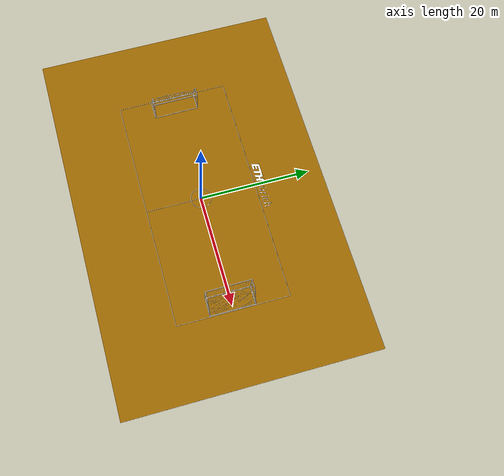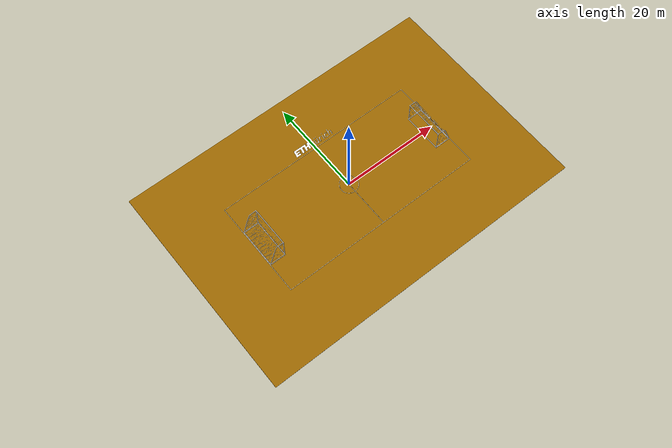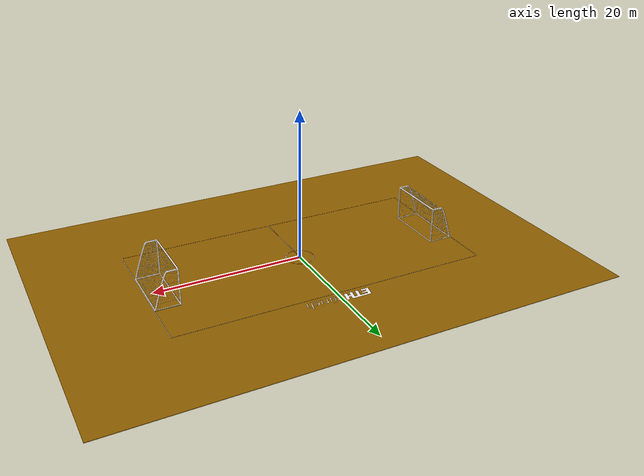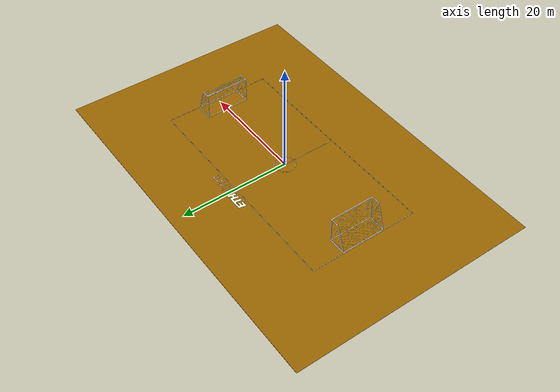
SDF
<sdf version='1.6'>
	<world name='default'>
	<gravity>0 0 -9.8</gravity>
		<model name='soccerfield_line'>
			<static>1</static>
			<pose>0 0 0 0 0 0</pose>
			<link name='link_d0'>
			<inertial>
			<mass>0</mass>
			<inertia>
			<ixx>0.166667</ixx>
			<ixy>0</ixy>
			<ixz>0</ixz>
			<iyy>0.166667</iyy>
			<iyz>0</iyz>
			<izz>0.166667</izz>
			</inertia>
			</inertial>
			<visual name='visual'>
				<geometry>
				<mesh>
					<scale>0.8 0.8 0.8</scale>
					<uri>soccerfield_line.obj</uri>
				</mesh>
				</geometry>
			<material>
				<ambient>1 1 1 1</ambient>
				<diffuse>1.00000 1.00000 1.000000 1</diffuse>
				<specular>0.1 .1 .1 1</specular>
				<emissive>0 0 0 0</emissive>
			 </material>
			 </visual>
			 </link>
		</model>
		<model name='soccerfield_goal_left'>
			<static>1</static>
			<pose>-19.04 0 0 1.570796 0 -1.570796</pose>
			<link name='link_d0'>
			<inertial>
			<mass>10</mass>
			<inertia>
			<ixx>0.166667</ixx>
			<ixy>0</ixy>
			<ixz>0</ixz>
			<iyy>0.166667</iyy>
			<iyz>0</iyz>
			<izz>0.166667</izz>
			</inertia>
			</inertial>
			<visual name='visual'>
				<geometry>
				<mesh>
					<scale>0.8 1.2 0.8</scale>
					<uri>soccerfield_goal.obj</uri>
				</mesh>
				</geometry>
			<material>
				<ambient>1 1 1 1</ambient>
				<diffuse>1.00000 1.00000 1.000000 1</diffuse>
				<specular>0.1 .1 .1 1</specular>
				<emissive>0 0 0 0</emissive>
			 </material>
			 </visual>
			 </link>
		</model>
		<model name='soccerfield_goal_right'>
			<static>1</static>
			<pose>19.04 0 0 1.570796 0 1.570796</pose>
			<link name='link_d0'>
			<inertial>
			<mass>10</mass>
			<inertia>
			<ixx>0.166667</ixx>
			<ixy>0</ixy>
			<ixz>0</ixz>
			<iyy>0.166667</iyy>
			<iyz>0</iyz>
			<izz>0.166667</izz>
			</inertia>
			</inertial>
			<visual name='visual'>
				<geometry>
				<mesh>
					<scale>0.8 1.2 0.8</scale>
					<uri>soccerfield_goal.obj</uri>
				</mesh>
				</geometry>
			<material>
				<ambient>1 1 1 1</ambient>
				<diffuse>1.00000 1.00000 1.000000 1</diffuse>
				<specular>0.1 .1 .1 1</specular>
				<emissive>0 0 0 0</emissive>
			 </material>
			 </visual>
			 </link>
		</model>
		<model name='soccerfield_grass'>
			<static>1</static>
			<pose>0 0 0 0 0 0</pose>
			<link name='link_d1'>
			<inertial>
			<mass>0</mass>
			<inertia>
			<ixx>0.166667</ixx>
			<ixy>0</ixy>
			<ixz>0</ixz>
			<iyy>0.166667</iyy>
			<iyz>0</iyz>
			<izz>0.166667</izz>
			</inertia>
			</inertial>
			<collision name='collision_1'>
			<geometry>
            <plane>
              <normal>0 0 1</normal>
              <size>100 100</size>
            </plane>
            </geometry>
			</collision>
			<visual name='visual'>
				<geometry>
				<mesh>
					<scale>0.8 0.8 0.8</scale>
					<uri>soccerfield_grass.obj</uri>
				</mesh>
				</geometry>
			<material>
				<ambient>1 1 1 1</ambient>
				<diffuse>0.600000 0.400000 0.000000 1</diffuse>
				<specular>.5 .5 .5 1</specular>
				<emissive>0 0 0 0</emissive>
			 </material>
			 </visual>
			 </link>
		</model>
	</world>
</sdf>
